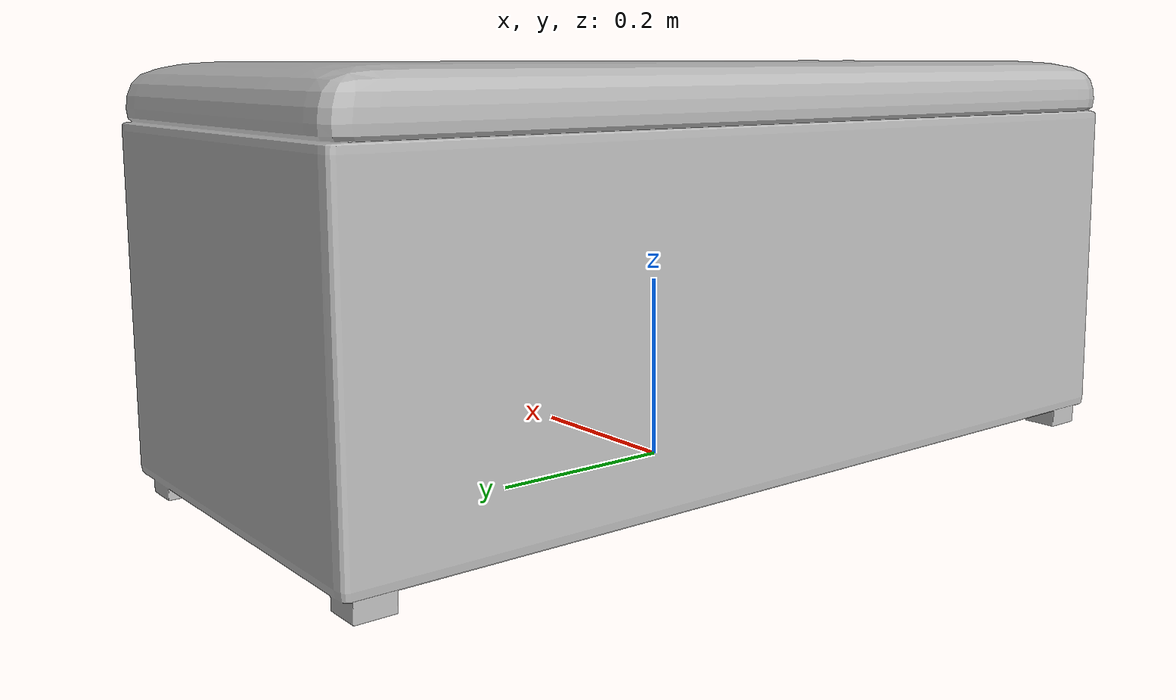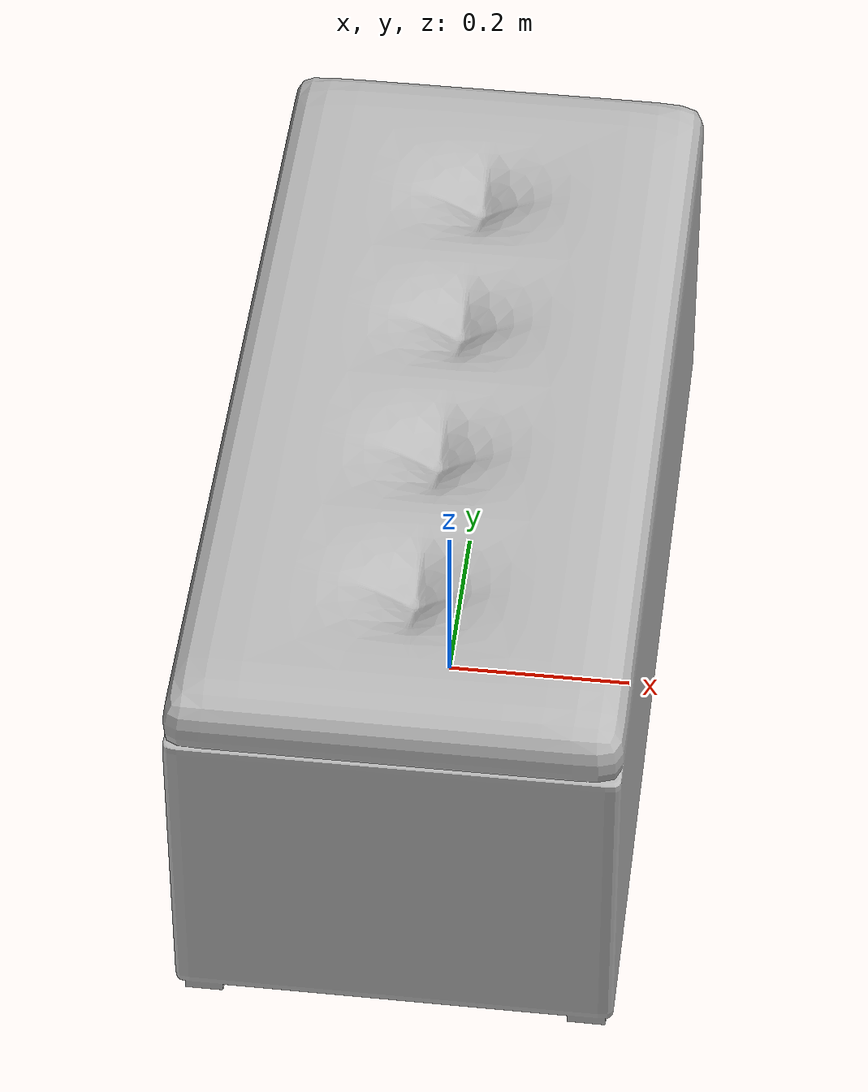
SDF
<?xml version='1.0'?>
<sdf version='1.4'>
  <model name='553'>
    <pose>0 0 0 0 0 0</pose>
    <static>true</static>
    <link name='link'>
      <collision name='collision'>
        <pose>0 0 0 0 0 0</pose>
        <geometry>
          <box>
            <size>0.459612 1 2</size>
          </box>
        </geometry>
      </collision>
      <visual name='visual'>
        <pose>0 0 0 0 0 0</pose>
        <geometry>
          <mesh><uri>model://553/553.dae</uri></mesh>
        </geometry>
      </visual>
    </link>
  </model>
</sdf>
